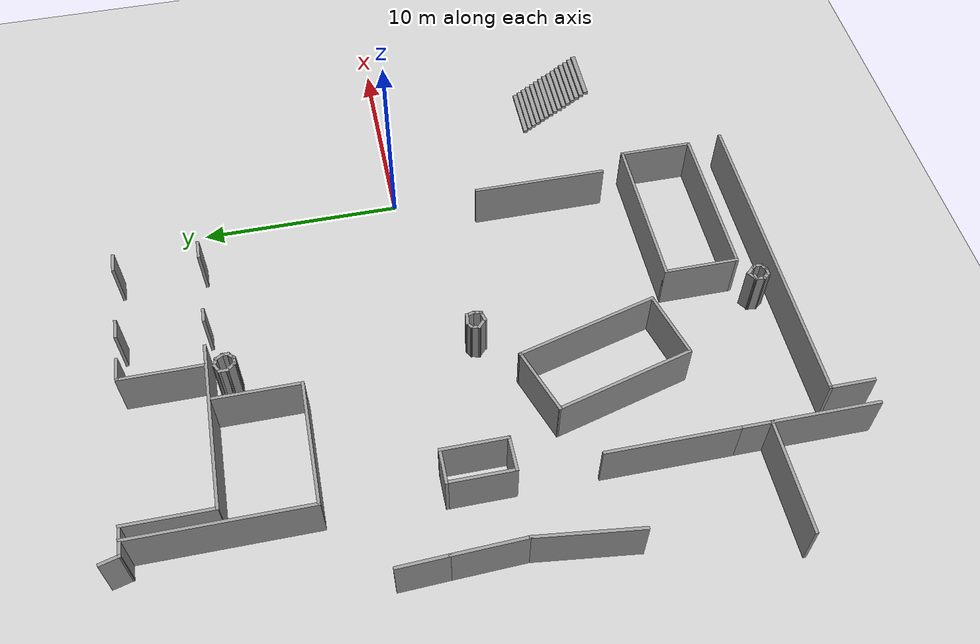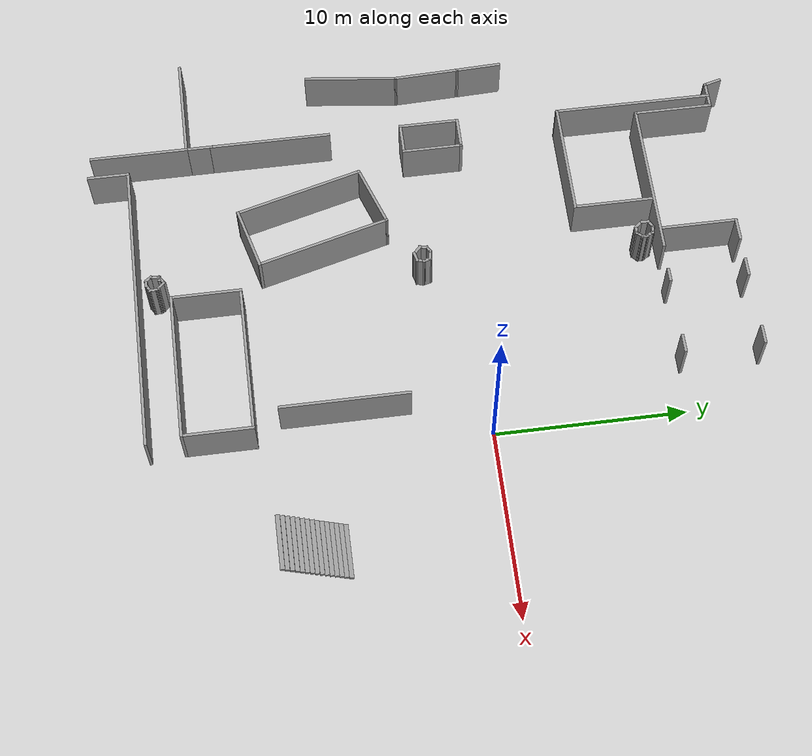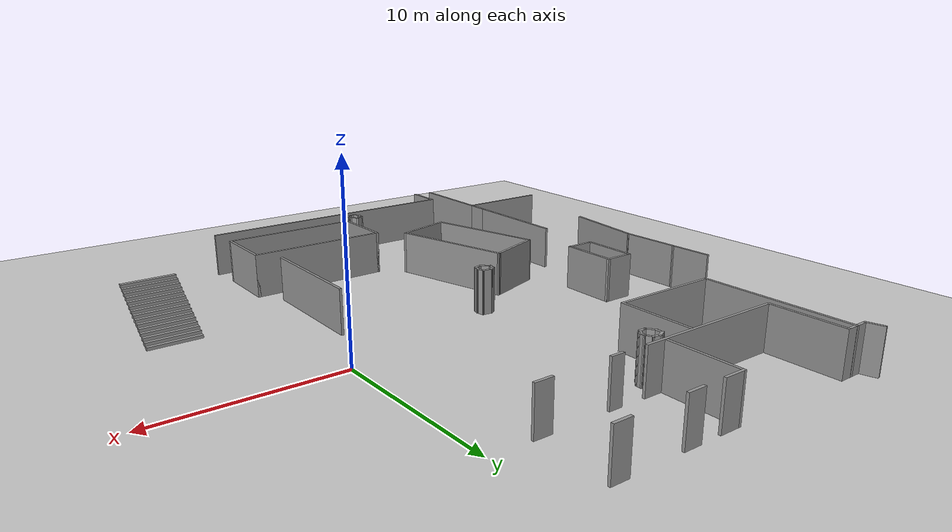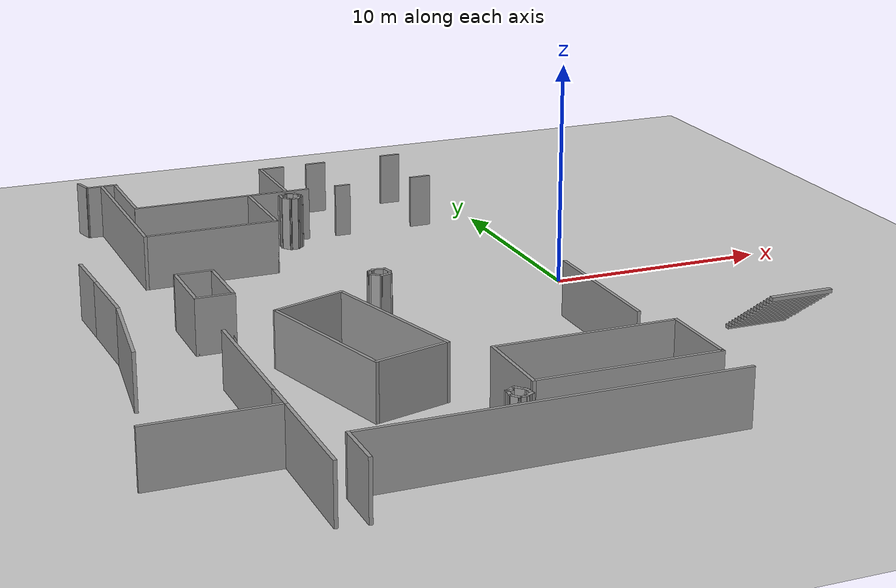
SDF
<sdf version="1.6">
 <world name="default">
  <model name="ground_plane">
   <static>1</static>
   <link name="link">
    <collision name="collision">
     <geometry><plane><normal>0 0 1</normal><size>100 100</size></plane></geometry>
     <surface>
      <contact><collide_bitmask>65535</collide_bitmask></contact>
      <friction><ode><mu>100</mu><mu2>50</mu2></ode></friction>
     </surface>
    </collision>
    <visual name="visual">
     <cast_shadows>0</cast_shadows>
     <geometry><plane><normal>0 0 1</normal><size>100 100</size></plane></geometry>
     <material>
      <script><uri>file://media/materials/scripts/gazebo.material</uri><name>Gazebo/Grey</name></script>
     </material>
    </visual>
   </link>
  </model>
  <model name="L8_1st">
   <pose>-0.728485 -0.360932 0 0 -0 0</pose>
   <link name="Stairs_0">
    <visual name="Stairs_0_Visual_0">
     <pose>6.15456 -7.6847 0.083333 0 -0 0</pose>
     <geometry><box><size>2.83541 0.233333 0.166667</size></box></geometry>
     <material>
      <script><uri>file://media/materials/scripts/gazebo.material</uri><name>Gazebo/Grey</name></script>
      <ambient>1 1 1 1</ambient>
     </material>
     <meta><layer>0</layer></meta>
    </visual>
    <collision name="Stairs_0_Collision_0">
     <geometry><box><size>2.83541 0.233333 0.166667</size></box></geometry>
     <pose>6.15456 -7.6847 0.083333 0 -0 0</pose>
    </collision>
    <visual name="Stairs_0_Visual_1">
     <pose>6.15456 -7.91804 0.25 0 -0 0</pose>
     <geometry><box><size>2.83541 0.233333 0.166667</size></box></geometry>
     <material>
      <script><uri>file://media/materials/scripts/gazebo.material</uri><name>Gazebo/Grey</name></script>
      <ambient>1 1 1 1</ambient>
     </material>
     <meta><layer>0</layer></meta>
    </visual>
    <collision name="Stairs_0_Collision_1">
     <geometry><box><size>2.83541 0.233333 0.166667</size></box></geometry>
     <pose>6.15456 -7.91804 0.25 0 -0 0</pose>
    </collision>
    <visual name="Stairs_0_Visual_2">
     <pose>6.15456 -8.15137 0.416667 0 -0 0</pose>
     <geometry><box><size>2.83541 0.233333 0.166667</size></box></geometry>
     <material>
      <script><uri>file://media/materials/scripts/gazebo.material</uri><name>Gazebo/Grey</name></script>
      <ambient>1 1 1 1</ambient>
     </material>
     <meta><layer>0</layer></meta>
    </visual>
    <collision name="Stairs_0_Collision_2">
     <geometry><box><size>2.83541 0.233333 0.166667</size></box></geometry>
     <pose>6.15456 -8.15137 0.416667 0 -0 0</pose>
    </collision>
    <visual name="Stairs_0_Visual_3">
     <pose>6.15456 -8.3847 0.583333 0 -0 0</pose>
     <geometry><box><size>2.83541 0.233333 0.166667</size></box></geometry>
     <material>
      <script><uri>file://media/materials/scripts/gazebo.material</uri><name>Gazebo/Grey</name></script>
      <ambient>1 1 1 1</ambient>
     </material>
     <meta><layer>0</layer></meta>
    </visual>
    <collision name="Stairs_0_Collision_3">
     <geometry><box><size>2.83541 0.233333 0.166667</size></box></geometry>
     <pose>6.15456 -8.3847 0.583333 0 -0 0</pose>
    </collision>
    <visual name="Stairs_0_Visual_4">
     <pose>6.15456 -8.61804 0.75 0 -0 0</pose>
     <geometry><box><size>2.83541 0.233333 0.166667</size></box></geometry>
     <material>
      <script><uri>file://media/materials/scripts/gazebo.material</uri><name>Gazebo/Grey</name></script>
      <ambient>1 1 1 1</ambient>
     </material>
     <meta><layer>0</layer></meta>
    </visual>
    <collision name="Stairs_0_Collision_4">
     <geometry><box><size>2.83541 0.233333 0.166667</size></box></geometry>
     <pose>6.15456 -8.61804 0.75 0 -0 0</pose>
    </collision>
    <visual name="Stairs_0_Visual_5">
     <pose>6.15456 -8.85137 0.916667 0 -0 0</pose>
     <geometry><box><size>2.83541 0.233333 0.166667</size></box></geometry>
     <material>
      <script><uri>file://media/materials/scripts/gazebo.material</uri><name>Gazebo/Grey</name></script>
      <ambient>1 1 1 1</ambient>
     </material>
     <meta><layer>0</layer></meta>
    </visual>
    <collision name="Stairs_0_Collision_5">
     <geometry><box><size>2.83541 0.233333 0.166667</size></box></geometry>
     <pose>6.15456 -8.85137 0.916667 0 -0 0</pose>
    </collision>
    <visual name="Stairs_0_Visual_6">
     <pose>6.15456 -9.0847 1.08333 0 -0 0</pose>
     <geometry><box><size>2.83541 0.233333 0.166667</size></box></geometry>
     <material>
      <script><uri>file://media/materials/scripts/gazebo.material</uri><name>Gazebo/Grey</name></script>
      <ambient>1 1 1 1</ambient>
     </material>
     <meta><layer>0</layer></meta>
    </visual>
    <collision name="Stairs_0_Collision_6">
     <geometry><box><size>2.83541 0.233333 0.166667</size></box></geometry>
     <pose>6.15456 -9.0847 1.08333 0 -0 0</pose>
    </collision>
    <visual name="Stairs_0_Visual_7">
     <pose>6.15456 -9.31804 1.25 0 -0 0</pose>
     <geometry><box><size>2.83541 0.233333 0.166667</size></box></geometry>
     <material>
      <script><uri>file://media/materials/scripts/gazebo.material</uri><name>Gazebo/Grey</name></script>
      <ambient>1 1 1 1</ambient>
     </material>
     <meta><layer>0</layer></meta>
    </visual>
    <collision name="Stairs_0_Collision_7">
     <geometry><box><size>2.83541 0.233333 0.166667</size></box></geometry>
     <pose>6.15456 -9.31804 1.25 0 -0 0</pose>
    </collision>
    <visual name="Stairs_0_Visual_8">
     <pose>6.15456 -9.55137 1.41667 0 -0 0</pose>
     <geometry><box><size>2.83541 0.233333 0.166667</size></box></geometry>
     <material>
      <script><uri>file://media/materials/scripts/gazebo.material</uri><name>Gazebo/Grey</name></script>
      <ambient>1 1 1 1</ambient>
     </material>
     <meta><layer>0</layer></meta>
    </visual>
    <collision name="Stairs_0_Collision_8">
     <geometry><box><size>2.83541 0.233333 0.166667</size></box></geometry>
     <pose>6.15456 -9.55137 1.41667 0 -0 0</pose>
    </collision>
    <visual name="Stairs_0_Visual_9">
     <pose>6.15456 -9.7847 1.58333 0 -0 0</pose>
     <geometry><box><size>2.83541 0.233333 0.166667</size></box></geometry>
     <material>
      <script><uri>file://media/materials/scripts/gazebo.material</uri><name>Gazebo/Grey</name></script>
      <ambient>1 1 1 1</ambient>
     </material>
     <meta><layer>0</layer></meta>
    </visual>
    <collision name="Stairs_0_Collision_9">
     <geometry><box><size>2.83541 0.233333 0.166667</size></box></geometry>
     <pose>6.15456 -9.7847 1.58333 0 -0 0</pose>
    </collision>
    <visual name="Stairs_0_Visual_10">
     <pose>6.15456 -10.018 1.75 0 -0 0</pose>
     <geometry><box><size>2.83541 0.233333 0.166667</size></box></geometry>
     <material>
      <script><uri>file://media/materials/scripts/gazebo.material</uri><name>Gazebo/Grey</name></script>
      <ambient>1 1 1 1</ambient>
     </material>
     <meta><layer>0</layer></meta>
    </visual>
    <collision name="Stairs_0_Collision_10">
     <geometry><box><size>2.83541 0.233333 0.166667</size></box></geometry>
     <pose>6.15456 -10.018 1.75 0 -0 0</pose>
    </collision>
    <visual name="Stairs_0_Visual_11">
     <pose>6.15456 -10.2514 1.91667 0 -0 0</pose>
     <geometry><box><size>2.83541 0.233333 0.166667</size></box></geometry>
     <material>
      <script><uri>file://media/materials/scripts/gazebo.material</uri><name>Gazebo/Grey</name></script>
      <ambient>1 1 1 1</ambient>
     </material>
     <meta><layer>0</layer></meta>
    </visual>
    <collision name="Stairs_0_Collision_11">
     <geometry><box><size>2.83541 0.233333 0.166667</size></box></geometry>
     <pose>6.15456 -10.2514 1.91667 0 -0 0</pose>
    </collision>
    <visual name="Stairs_0_Visual_12">
     <pose>6.15456 -10.4847 2.08333 0 -0 0</pose>
     <geometry><box><size>2.83541 0.233333 0.166667</size></box></geometry>
     <material>
      <script><uri>file://media/materials/scripts/gazebo.material</uri><name>Gazebo/Grey</name></script>
      <ambient>1 1 1 1</ambient>
     </material>
     <meta><layer>0</layer></meta>
    </visual>
    <collision name="Stairs_0_Collision_12">
     <geometry><box><size>2.83541 0.233333 0.166667</size></box></geometry>
     <pose>6.15456 -10.4847 2.08333 0 -0 0</pose>
    </collision>
    <visual name="Stairs_0_Visual_13">
     <pose>6.15456 -10.718 2.25 0 -0 0</pose>
     <geometry><box><size>2.83541 0.233333 0.166667</size></box></geometry>
     <material>
      <script><uri>file://media/materials/scripts/gazebo.material</uri><name>Gazebo/Grey</name></script>
      <ambient>1 1 1 1</ambient>
     </material>
     <meta><layer>0</layer></meta>
    </visual>
    <collision name="Stairs_0_Collision_13">
     <geometry><box><size>2.83541 0.233333 0.166667</size></box></geometry>
     <pose>6.15456 -10.718 2.25 0 -0 0</pose>
    </collision>
    <visual name="Stairs_0_Visual_14">
     <pose>6.15456 -10.9514 2.41667 0 -0 0</pose>
     <geometry><box><size>2.83541 0.233333 0.166667</size></box></geometry>
     <material>
      <script><uri>file://media/materials/scripts/gazebo.material</uri><name>Gazebo/Grey</name></script>
      <ambient>1 1 1 1</ambient>
     </material>
     <meta><layer>0</layer></meta>
    </visual>
    <collision name="Stairs_0_Collision_14">
     <geometry><box><size>2.83541 0.233333 0.166667</size></box></geometry>
     <pose>6.15456 -10.9514 2.41667 0 -0 0</pose>
    </collision>
   </link>
   <link name="Wall_1">
    <collision name="Wall_1_Collision">
     <geometry><box><size>1 0.15 2.5</size></box></geometry>
     <pose>0 0 1.25 0 -0 0</pose>
    </collision>
    <visual name="Wall_1_Visual">
     <pose>0 0 1.25 0 -0 0</pose>
     <geometry><box><size>1 0.15 2.5</size></box></geometry>
     <material>
      <script><uri>file://media/materials/scripts/gazebo.material</uri><name>Gazebo/Grey</name></script>
      <ambient>1 1 1 1</ambient>
     </material>
     <meta><layer>0</layer></meta>
    </visual>
    <pose>-17.5999 15.0329 0 0 -0 -1.309</pose>
   </link>
   <link name="Wall_10">
    <collision name="Wall_10_Collision">
     <geometry><box><size>1.25 0.15 2.5</size></box></geometry>
     <pose>0 0 1.25 0 -0 0</pose>
    </collision>
    <visual name="Wall_10_Visual">
     <pose>0 0 1.25 0 -0 0</pose>
     <geometry><box><size>1.25 0.15 2.5</size></box></geometry>
     <material>
      <script><uri>file://media/materials/scripts/gazebo.material</uri><name>Gazebo/Grey</name></script>
      <ambient>1 1 1 1</ambient>
     </material>
     <meta><layer>0</layer></meta>
    </visual>
    <pose>-8.28087 14.5624 0 0 -0 0</pose>
   </link>
   <link name="Wall_108">
    <collision name="Wall_108_Collision">
     <geometry><box><size>2.47667 0.15 2.5</size></box></geometry>
     <pose>0 0 1.25 0 -0 0</pose>
    </collision>
    <visual name="Wall_108_Visual">
     <pose>0 0 1.25 0 -0 0</pose>
     <geometry><box><size>2.47667 0.15 2.5</size></box></geometry>
     <material>
      <script><uri>file://media/materials/scripts/gazebo.material</uri><name>Gazebo/Grey</name></script>
      <ambient>1 1 1 1</ambient>
     </material>
     <meta><layer>0</layer></meta>
    </visual>
    <pose>-20.215 2.4122 0 0 -0 1.61025</pose>
   </link>
   <link name="Wall_110">
    <collision name="Wall_110_Collision">
     <geometry><box><size>3.57829 0.15 2.5</size></box></geometry>
     <pose>0 0 1.25 0 -0 0</pose>
    </collision>
    <visual name="Wall_110_Visual">
     <pose>0 0 1.25 0 -0 0</pose>
     <geometry><box><size>3.57829 0.15 2.5</size></box></geometry>
     <material>
      <script><uri>file://media/materials/scripts/gazebo.material</uri><name>Gazebo/Grey</name></script>
      <ambient>1 1 1 1</ambient>
     </material>
     <meta><layer>0</layer></meta>
    </visual>
    <pose>-20.1079 -0.46328 0 0 -0 1.6065</pose>
   </link>
   <link name="Wall_112">
    <collision name="Wall_112_Collision">
     <geometry><box><size>5.07883 0.15 2.5</size></box></geometry>
     <pose>0 0 1.25 0 -0 0</pose>
    </collision>
    <visual name="Wall_112_Visual">
     <pose>0 0 1.25 0 -0 0</pose>
     <geometry><box><size>5.07883 0.15 2.5</size></box></geometry>
     <material>
      <script><uri>file://media/materials/scripts/gazebo.material</uri><name>Gazebo/Grey</name></script>
      <ambient>1 1 1 1</ambient>
     </material>
     <meta><layer>0</layer></meta>
    </visual>
    <pose>-20.3373 -4.62355 0 0 -0 1.4526</pose>
   </link>
   <link name="Wall_15">
    <collision name="Wall_15_Collision">
     <geometry><box><size>0.75 0.15 2.5</size></box></geometry>
     <pose>0 0 1.25 0 -0 0</pose>
    </collision>
    <visual name="Wall_15_Visual">
     <pose>0 0 1.25 0 -0 0</pose>
     <geometry><box><size>0.75 0.15 2.5</size></box></geometry>
     <material>
      <script><uri>file://media/materials/scripts/gazebo.material</uri><name>Gazebo/Grey</name></script>
      <ambient>1 1 1 1</ambient>
     </material>
     <meta><layer>0</layer></meta>
    </visual>
    <pose>-6.01231 10.4676 0 0 -0 0</pose>
   </link>
   <link name="Wall_165">
    <collision name="Wall_165_Collision">
     <geometry><box><size>1.5 0.15 2.5</size></box></geometry>
     <pose>0 0 1.25 0 -0 0</pose>
    </collision>
    <visual name="Wall_165_Visual">
     <pose>0 0 1.25 0 -0 0</pose>
     <geometry><box><size>1.5 0.15 2.5</size></box></geometry>
     <material>
      <script><uri>file://media/materials/scripts/gazebo.material</uri><name>Gazebo/Grey</name></script>
      <ambient>1 1 1 1</ambient>
     </material>
     <meta><layer>0</layer></meta>
    </visual>
    <pose>-16.8493 -13.2356 0 0 -0 -1.5708</pose>
   </link>
   <link name="Wall_166">
    <collision name="Wall_166_Collision">
     <geometry><box><size>5.5 0.15 2.5</size></box></geometry>
     <pose>0 0 1.25 0 -0 0</pose>
    </collision>
    <visual name="Wall_166_Visual">
     <pose>0 0 1.25 0 -0 0</pose>
     <geometry><box><size>5.5 0.15 2.5</size></box></geometry>
     <material>
      <script><uri>file://media/materials/scripts/gazebo.material</uri><name>Gazebo/Grey</name></script>
      <ambient>1 1 1 1</ambient>
     </material>
     <meta><layer>0</layer></meta>
    </visual>
    <pose>-19.5243 -13.9106 0 0 -0 3.14159</pose>
   </link>
   <link name="Wall_17">
    <collision name="Wall_17_Collision">
     <geometry><box><size>1 0.15 2.5</size></box></geometry>
     <pose>0 0 1.25 0 -0 0</pose>
    </collision>
    <visual name="Wall_17_Visual">
     <pose>0 0 1.25 0 -0 0</pose>
     <geometry><box><size>1 0.15 2.5</size></box></geometry>
     <material>
      <script><uri>file://media/materials/scripts/gazebo.material</uri><name>Gazebo/Grey</name></script>
      <ambient>1 1 1 1</ambient>
     </material>
     <meta><layer>0</layer></meta>
    </visual>
    <pose>-2.00451 10.4676 0 0 -0 0</pose>
   </link>
   <link name="Wall_170">
    <collision name="Wall_170_Collision">
     <geometry><box><size>5.25 0.15 2.5</size></box></geometry>
     <pose>0 0 1.25 0 -0 0</pose>
    </collision>
    <visual name="Wall_170_Visual">
     <pose>0 0 1.25 0 -0 0</pose>
     <geometry><box><size>5.25 0.15 2.5</size></box></geometry>
     <material>
      <script><uri>file://media/materials/scripts/gazebo.material</uri><name>Gazebo/Grey</name></script>
      <ambient>1 1 1 1</ambient>
     </material>
     <meta><layer>0</layer></meta>
    </visual>
    <pose>-16.8493 -16.4606 0 0 -0 -1.5708</pose>
   </link>
   <link name="Wall_178">
    <collision name="Wall_178_Collision">
     <geometry><box><size>3.25 0.15 2.5</size></box></geometry>
     <pose>0 0 1.25 0 -0 0</pose>
    </collision>
    <visual name="Wall_178_Visual">
     <pose>0 0 1.25 0 -0 0</pose>
     <geometry><box><size>3.25 0.15 2.5</size></box></geometry>
     <material>
      <script><uri>file://media/materials/scripts/gazebo.material</uri><name>Gazebo/Grey</name></script>
      <ambient>1 1 1 1</ambient>
     </material>
     <meta><layer>0</layer></meta>
    </visual>
    <pose>-16.8799 -0.742669 0 0 -0 -1.5708</pose>
   </link>
   <link name="Wall_179">
    <collision name="Wall_179_Collision">
     <geometry><box><size>1.75 0.15 2.5</size></box></geometry>
     <pose>0 0 1.25 0 -0 0</pose>
    </collision>
    <visual name="Wall_179_Visual">
     <pose>0 0 1.25 0 -0 0</pose>
     <geometry><box><size>1.75 0.15 2.5</size></box></geometry>
     <material>
      <script><uri>file://media/materials/scripts/gazebo.material</uri><name>Gazebo/Grey</name></script>
      <ambient>1 1 1 1</ambient>
     </material>
     <meta><layer>0</layer></meta>
    </visual>
    <pose>-16.0799 -2.29267 0 0 -0 0</pose>
   </link>
   <link name="Wall_180">
    <collision name="Wall_180_Collision">
     <geometry><box><size>3.25 0.15 2.5</size></box></geometry>
     <pose>0 0 1.25 0 -0 0</pose>
    </collision>
    <visual name="Wall_180_Visual">
     <pose>0 0 1.25 0 -0 0</pose>
     <geometry><box><size>3.25 0.15 2.5</size></box></geometry>
     <material>
      <script><uri>file://media/materials/scripts/gazebo.material</uri><name>Gazebo/Grey</name></script>
      <ambient>1 1 1 1</ambient>
     </material>
     <meta><layer>0</layer></meta>
    </visual>
    <pose>-15.2799 -0.742669 0 0 -0 1.5708</pose>
   </link>
   <link name="Wall_181">
    <collision name="Wall_181_Collision">
     <geometry><box><size>1.75 0.15 2.5</size></box></geometry>
     <pose>0 0 1.25 0 -0 0</pose>
    </collision>
    <visual name="Wall_181_Visual">
     <pose>0 0 1.25 0 -0 0</pose>
     <geometry><box><size>1.75 0.15 2.5</size></box></geometry>
     <material>
      <script><uri>file://media/materials/scripts/gazebo.material</uri><name>Gazebo/Grey</name></script>
      <ambient>1 1 1 1</ambient>
     </material>
     <meta><layer>0</layer></meta>
    </visual>
    <pose>-16.0799 0.807331 0 0 -0 3.14159</pose>
   </link>
   <link name="Wall_183">
    <collision name="Wall_183_Collision">
     <geometry><box><size>8.5 0.15 2.5</size></box></geometry>
     <pose>0 0 1.25 0 -0 0</pose>
    </collision>
    <visual name="Wall_183_Visual">
     <pose>0 0 1.25 0 -0 0</pose>
     <geometry><box><size>8.5 0.15 2.5</size></box></geometry>
     <material>
      <script><uri>file://media/materials/scripts/gazebo.material</uri><name>Gazebo/Grey</name></script>
      <ambient>1 1 1 1</ambient>
     </material>
     <meta><layer>0</layer></meta>
    </visual>
    <pose>-16.7881 10.4591 0 0 -0 -1.5708</pose>
   </link>
   <link name="Wall_184">
    <collision name="Wall_184_Collision">
     <geometry><box><size>6.25 0.15 2.5</size></box></geometry>
     <pose>0 0 1.25 0 -0 0</pose>
    </collision>
    <visual name="Wall_184_Visual">
     <pose>0 0 1.25 0 -0 0</pose>
     <geometry><box><size>6.25 0.15 2.5</size></box></geometry>
     <material>
      <script><uri>file://media/materials/scripts/gazebo.material</uri><name>Gazebo/Grey</name></script>
      <ambient>1 1 1 1</ambient>
     </material>
     <meta><layer>0</layer></meta>
    </visual>
    <pose>-13.7381 6.28411 0 0 -0 0</pose>
   </link>
   <link name="Wall_185">
    <collision name="Wall_185_Collision">
     <geometry><box><size>4.25 0.15 2.5</size></box></geometry>
     <pose>0 0 1.25 0 -0 0</pose>
    </collision>
    <visual name="Wall_185_Visual">
     <pose>0 0 1.25 0 -0 0</pose>
     <geometry><box><size>4.25 0.15 2.5</size></box></geometry>
     <material>
      <script><uri>file://media/materials/scripts/gazebo.material</uri><name>Gazebo/Grey</name></script>
      <ambient>1 1 1 1</ambient>
     </material>
     <meta><layer>0</layer></meta>
    </visual>
    <pose>-10.6881 8.33411 0 0 -0 1.5708</pose>
   </link>
   <link name="Wall_187">
    <collision name="Wall_187_Collision">
     <geometry><box><size>6.5 0.15 2.5</size></box></geometry>
     <pose>0 0 1.25 0 -0 0</pose>
    </collision>
    <visual name="Wall_187_Visual">
     <pose>0 0 1.25 0 -0 0</pose>
     <geometry><box><size>6.5 0.15 2.5</size></box></geometry>
     <material>
      <script><uri>file://media/materials/scripts/gazebo.material</uri><name>Gazebo/Grey</name></script>
      <ambient>1 1 1 1</ambient>
     </material>
     <meta><layer>0</layer></meta>
    </visual>
    <pose>-16.8493 -9.3856 0 0 -0 1.5708</pose>
   </link>
   <link name="Wall_19">
    <collision name="Wall_19_Collision">
     <geometry><box><size>1 0.15 2.5</size></box></geometry>
     <pose>0 0 1.25 0 -0 0</pose>
    </collision>
    <visual name="Wall_19_Visual">
     <pose>0 0 1.25 0 -0 0</pose>
     <geometry><box><size>1 0.15 2.5</size></box></geometry>
     <material>
      <script><uri>file://media/materials/scripts/gazebo.material</uri><name>Gazebo/Grey</name></script>
      <ambient>1 1 1 1</ambient>
     </material>
     <meta><layer>0</layer></meta>
    </visual>
    <pose>-5.99225 14.5603 0 0 -0 0</pose>
   </link>
   <link name="Wall_2">
    <collision name="Wall_2_Collision">
     <geometry><box><size>1.5 0.15 2.5</size></box></geometry>
     <pose>0 0 1.25 0 -0 0</pose>
    </collision>
    <visual name="Wall_2_Visual">
     <pose>0 0 1.25 0 -0 0</pose>
     <geometry><box><size>1.5 0.15 2.5</size></box></geometry>
     <material>
      <script><uri>file://media/materials/scripts/gazebo.material</uri><name>Gazebo/Grey</name></script>
      <ambient>1 1 1 1</ambient>
     </material>
     <meta><layer>0</layer></meta>
    </visual>
    <pose>-16.8149 14.6224 0 0 -0 0</pose>
   </link>
   <link name="Wall_205">
    <collision name="Wall_205_Collision">
     <geometry><box><size>0.424966 0.15 2.5</size></box></geometry>
     <pose>0 0 1.25 0 -0 0</pose>
    </collision>
    <visual name="Wall_205_Visual">
     <pose>0 0 1.25 0 -0 0</pose>
     <geometry><box><size>0.424966 0.15 2.5</size></box></geometry>
     <material>
      <script><uri>file://media/materials/scripts/gazebo.material</uri><name>Gazebo/Grey</name></script>
      <ambient>1 1 1 1</ambient>
     </material>
     <meta><layer>0</layer></meta>
    </visual>
    <pose>-9.09049 -1.75113 0 0 -0 -2.59807</pose>
   </link>
   <link name="Wall_206">
    <collision name="Wall_206_Collision">
     <geometry><box><size>0.509128 0.15 2.5</size></box></geometry>
     <pose>0 0 1.25 0 -0 0</pose>
    </collision>
    <visual name="Wall_206_Visual">
     <pose>0 0 1.25 0 -0 0</pose>
     <geometry><box><size>0.509128 0.15 2.5</size></box></geometry>
     <material>
      <script><uri>file://media/materials/scripts/gazebo.material</uri><name>Gazebo/Grey</name></script>
      <ambient>1 1 1 1</ambient>
     </material>
     <meta><layer>0</layer></meta>
    </visual>
    <pose>-9.24839 -2.01734 0 0 -0 -1.79674</pose>
   </link>
   <link name="Wall_207">
    <collision name="Wall_207_Collision">
     <geometry><box><size>0.644904 0.15 2.5</size></box></geometry>
     <pose>0 0 1.25 0 -0 0</pose>
    </collision>
    <visual name="Wall_207_Visual">
     <pose>0 0 1.25 0 -0 0</pose>
     <geometry><box><size>0.644904 0.15 2.5</size></box></geometry>
     <material>
      <script><uri>file://media/materials/scripts/gazebo.material</uri><name>Gazebo/Grey</name></script>
      <ambient>1 1 1 1</ambient>
     </material>
     <meta><layer>0</layer></meta>
    </visual>
    <pose>-9.10689 -2.34018 0 0 -0 -0.746038</pose>
   </link>
   <link name="Wall_208">
    <collision name="Wall_208_Collision">
     <geometry><box><size>0.582921 0.15 2.5</size></box></geometry>
     <pose>0 0 1.25 0 -0 0</pose>
    </collision>
    <visual name="Wall_208_Visual">
     <pose>0 0 1.25 0 -0 0</pose>
     <geometry><box><size>0.582921 0.15 2.5</size></box></geometry>
     <material>
      <script><uri>file://media/materials/scripts/gazebo.material</uri><name>Gazebo/Grey</name></script>
      <ambient>1 1 1 1</ambient>
     </material>
     <meta><layer>0</layer></meta>
    </visual>
    <pose>-8.7159 -2.4729 0 0 -0 0.258577</pose>
   </link>
   <link name="Wall_209">
    <collision name="Wall_209_Collision">
     <geometry><box><size>0.5 0.15 2.5</size></box></geometry>
     <pose>0 0 1.25 0 -0 0</pose>
    </collision>
    <visual name="Wall_209_Visual">
     <pose>0 0 1.25 0 -0 0</pose>
     <geometry><box><size>0.5 0.15 2.5</size></box></geometry>
     <material>
      <script><uri>file://media/materials/scripts/gazebo.material</uri><name>Gazebo/Grey</name></script>
      <ambient>1 1 1 1</ambient>
     </material>
     <meta><layer>0</layer></meta>
    </visual>
    <pose>-8.46134 -2.24851 0 0 -0 1.309</pose>
   </link>
   <link name="Wall_21">
    <collision name="Wall_21_Collision">
     <geometry><box><size>1 0.15 2.5</size></box></geometry>
     <pose>0 0 1.25 0 -0 0</pose>
    </collision>
    <visual name="Wall_21_Visual">
     <pose>0 0 1.25 0 -0 0</pose>
     <geometry><box><size>1 0.15 2.5</size></box></geometry>
     <material>
      <script><uri>file://media/materials/scripts/gazebo.material</uri><name>Gazebo/Grey</name></script>
      <ambient>1 1 1 1</ambient>
     </material>
     <meta><layer>0</layer></meta>
    </visual>
    <pose>-2.00451 14.5952 0 0 -0 0</pose>
   </link>
   <link name="Wall_210">
    <collision name="Wall_210_Collision">
     <geometry><box><size>0.5 0.15 2.5</size></box></geometry>
     <pose>0 0 1.25 0 -0 0</pose>
    </collision>
    <visual name="Wall_210_Visual">
     <pose>0 0 1.25 0 -0 0</pose>
     <geometry><box><size>0.5 0.15 2.5</size></box></geometry>
     <material>
      <script><uri>file://media/materials/scripts/gazebo.material</uri><name>Gazebo/Grey</name></script>
      <ambient>1 1 1 1</ambient>
     </material>
     <meta><layer>0</layer></meta>
    </visual>
    <pose>-8.46134 -1.91044 0 0 -0 1.8326</pose>
   </link>
   <link name="Wall_211">
    <collision name="Wall_211_Collision">
     <geometry><box><size>0.620206 0.15 2.5</size></box></geometry>
     <pose>0 0 1.25 0 -0 0</pose>
    </collision>
    <visual name="Wall_211_Visual">
     <pose>0 0 1.25 0 -0 0</pose>
     <geometry><box><size>0.620206 0.15 2.5</size></box></geometry>
     <material>
      <script><uri>file://media/materials/scripts/gazebo.material</uri><name>Gazebo/Grey</name></script>
      <ambient>1 1 1 1</ambient>
     </material>
     <meta><layer>0</layer></meta>
    </visual>
    <pose>-8.73973 -1.71071 0 0 -0 3.01069</pose>
   </link>
   <link name="Wall_213">
    <collision name="Wall_213_Collision">
     <geometry><box><size>0.3247 0.15 2.5</size></box></geometry>
     <pose>0 0 1.25 0 -0 0</pose>
    </collision>
    <visual name="Wall_213_Visual">
     <pose>0 0 1.25 0 -0 0</pose>
     <geometry><box><size>0.3247 0.15 2.5</size></box></geometry>
     <material>
      <script><uri>file://media/materials/scripts/gazebo.material</uri><name>Gazebo/Grey</name></script>
      <ambient>1 1 1 1</ambient>
     </material>
     <meta><layer>0</layer></meta>
    </visual>
    <pose>-9.10346 -15.8457 0 0 -0 -3.05551</pose>
   </link>
   <link name="Wall_214">
    <collision name="Wall_214_Collision">
     <geometry><box><size>0.559811 0.15 2.5</size></box></geometry>
     <pose>0 0 1.25 0 -0 0</pose>
    </collision>
    <visual name="Wall_214_Visual">
     <pose>0 0 1.25 0 -0 0</pose>
     <geometry><box><size>0.559811 0.15 2.5</size></box></geometry>
     <material>
      <script><uri>file://media/materials/scripts/gazebo.material</uri><name>Gazebo/Grey</name></script>
      <ambient>1 1 1 1</ambient>
     </material>
     <meta><layer>0</layer></meta>
    </visual>
    <pose>-9.20954 -16.0397 0 0 -0 -1.66394</pose>
   </link>
   <link name="Wall_215">
    <collision name="Wall_215_Collision">
     <geometry><box><size>0.490565 0.15 2.5</size></box></geometry>
     <pose>0 0 1.25 0 -0 0</pose>
    </collision>
    <visual name="Wall_215_Visual">
     <pose>0 0 1.25 0 -0 0</pose>
     <geometry><box><size>0.490565 0.15 2.5</size></box></geometry>
     <material>
      <script><uri>file://media/materials/scripts/gazebo.material</uri><name>Gazebo/Grey</name></script>
      <ambient>1 1 1 1</ambient>
     </material>
     <meta><layer>0</layer></meta>
    </visual>
    <pose>-9.12361 -16.3953 0 0 -0 -0.906426</pose>
   </link>
   <link name="Wall_216">
    <collision name="Wall_216_Collision">
     <geometry><box><size>0.43004 0.15 2.5</size></box></geometry>
     <pose>0 0 1.25 0 -0 0</pose>
    </collision>
    <visual name="Wall_216_Visual">
     <pose>0 0 1.25 0 -0 0</pose>
     <geometry><box><size>0.43004 0.15 2.5</size></box></geometry>
     <material>
      <script><uri>file://media/materials/scripts/gazebo.material</uri><name>Gazebo/Grey</name></script>
      <ambient>1 1 1 1</ambient>
     </material>
     <meta><layer>0</layer></meta>
    </visual>
    <pose>-8.8786 -16.5294 0 0 -0 0</pose>
   </link>
   <link name="Wall_217">
    <collision name="Wall_217_Collision">
     <geometry><box><size>0.5 0.15 2.5</size></box></geometry>
     <pose>0 0 1.25 0 -0 0</pose>
    </collision>
    <visual name="Wall_217_Visual">
     <pose>0 0 1.25 0 -0 0</pose>
     <geometry><box><size>0.5 0.15 2.5</size></box></geometry>
     <material>
      <script><uri>file://media/materials/scripts/gazebo.material</uri><name>Gazebo/Grey</name></script>
      <ambient>1 1 1 1</ambient>
     </material>
     <meta><layer>0</layer></meta>
    </visual>
    <pose>-8.58703 -16.4244 0 0 -0 0.523599</pose>
   </link>
   <link name="Wall_218">
    <collision name="Wall_218_Collision">
     <geometry><box><size>0.488703 0.15 2.5</size></box></geometry>
     <pose>0 0 1.25 0 -0 0</pose>
    </collision>
    <visual name="Wall_218_Visual">
     <pose>0 0 1.25 0 -0 0</pose>
     <geometry><box><size>0.488703 0.15 2.5</size></box></geometry>
     <material>
      <script><uri>file://media/materials/scripts/gazebo.material</uri><name>Gazebo/Grey</name></script>
      <ambient>1 1 1 1</ambient>
     </material>
     <meta><layer>0</layer></meta>
    </visual>
    <pose>-8.44579 -16.1853 0 0 -0 1.63173</pose>
   </link>
   <link name="Wall_219">
    <collision name="Wall_219_Collision">
     <geometry><box><size>0.25 0.15 2.5</size></box></geometry>
     <pose>0 0 1.25 0 -0 0</pose>
    </collision>
    <visual name="Wall_219_Visual">
     <pose>0 0 1.25 0 -0 0</pose>
     <geometry><box><size>0.25 0.15 2.5</size></box></geometry>
     <material>
      <script><uri>file://media/materials/scripts/gazebo.material</uri><name>Gazebo/Grey</name></script>
      <ambient>1 1 1 1</ambient>
     </material>
     <meta><layer>0</layer></meta>
    </visual>
    <pose>-8.4811 -15.973 0 0 -0 2.0944</pose>
   </link>
   <link name="Wall_220">
    <collision name="Wall_220_Collision">
     <geometry><box><size>0.586747 0.15 2.5</size></box></geometry>
     <pose>0 0 1.25 0 -0 0</pose>
    </collision>
    <visual name="Wall_220_Visual">
     <pose>0 0 1.25 0 -0 0</pose>
     <geometry><box><size>0.586747 0.15 2.5</size></box></geometry>
     <material>
      <script><uri>file://media/materials/scripts/gazebo.material</uri><name>Gazebo/Grey</name></script>
      <ambient>1 1 1 1</ambient>
     </material>
     <meta><layer>0</layer></meta>
    </visual>
    <pose>-8.65608 -15.771 0 0 -0 2.32787</pose>
   </link>
   <link name="Wall_221">
    <collision name="Wall_221_Collision">
     <geometry><box><size>0.61323 0.15 2.5</size></box></geometry>
     <pose>0 0 1.25 0 -0 0</pose>
    </collision>
    <visual name="Wall_221_Visual">
     <pose>0 0 1.25 0 -0 0</pose>
     <geometry><box><size>0.61323 0.15 2.5</size></box></geometry>
     <material>
      <script><uri>file://media/materials/scripts/gazebo.material</uri><name>Gazebo/Grey</name></script>
      <ambient>1 1 1 1</ambient>
     </material>
     <meta><layer>0</layer></meta>
    </visual>
    <pose>-8.99827 -15.724 0 0 -0 -2.5497</pose>
   </link>
   <link name="Wall_240">
    <collision name="Wall_240_Collision">
     <geometry><box><size>6.75 0.15 2.5</size></box></geometry>
     <pose>0 0 1.25 0 -0 0</pose>
    </collision>
    <visual name="Wall_240_Visual">
     <pose>0 0 1.25 0 -0 0</pose>
     <geometry><box><size>6.75 0.15 2.5</size></box></geometry>
     <material>
      <script><uri>file://media/materials/scripts/gazebo.material</uri><name>Gazebo/Grey</name></script>
      <ambient>1 1 1 1</ambient>
     </material>
     <meta><layer>0</layer></meta>
    </visual>
    <pose>-0.994539 -7.03138 0 0 -0 -1.5708</pose>
   </link>
   <link name="Wall_243">
    <collision name="Wall_243_Collision">
     <geometry><box><size>3.75 0.15 2.5</size></box></geometry>
     <pose>0 0 1.25 0 -0 0</pose>
    </collision>
    <visual name="Wall_243_Visual">
     <pose>0 0 1.25 0 -0 0</pose>
     <geometry><box><size>3.75 0.15 2.5</size></box></geometry>
     <material>
      <script><uri>file://media/materials/scripts/gazebo.material</uri><name>Gazebo/Grey</name></script>
      <ambient>1 1 1 1</ambient>
     </material>
     <meta><layer>0</layer></meta>
    </visual>
    <pose>-0.050074 -13.5069 0 0 -0 -1.5708</pose>
   </link>
   <link name="Wall_244">
    <collision name="Wall_244_Collision">
     <geometry><box><size>8 0.15 2.5</size></box></geometry>
     <pose>0 0 1.25 0 -0 0</pose>
    </collision>
    <visual name="Wall_244_Visual">
     <pose>0 0 1.25 0 -0 0</pose>
     <geometry><box><size>8 0.15 2.5</size></box></geometry>
     <material>
      <script><uri>file://media/materials/scripts/gazebo.material</uri><name>Gazebo/Grey</name></script>
      <ambient>1 1 1 1</ambient>
     </material>
     <meta><layer>0</layer></meta>
    </visual>
    <pose>-3.97507 -15.3069 0 0 -0 3.14159</pose>
   </link>
   <link name="Wall_245">
    <collision name="Wall_245_Collision">
     <geometry><box><size>3.75 0.15 2.5</size></box></geometry>
     <pose>0 0 1.25 0 -0 0</pose>
    </collision>
    <visual name="Wall_245_Visual">
     <pose>0 0 1.25 0 -0 0</pose>
     <geometry><box><size>3.75 0.15 2.5</size></box></geometry>
     <material>
      <script><uri>file://media/materials/scripts/gazebo.material</uri><name>Gazebo/Grey</name></script>
      <ambient>1 1 1 1</ambient>
     </material>
     <meta><layer>0</layer></meta>
    </visual>
    <pose>-7.90007 -13.5069 0 0 -0 1.5708</pose>
   </link>
   <link name="Wall_246">
    <collision name="Wall_246_Collision">
     <geometry><box><size>8 0.15 2.5</size></box></geometry>
     <pose>0 0 1.25 0 -0 0</pose>
    </collision>
    <visual name="Wall_246_Visual">
     <pose>0 0 1.25 0 -0 0</pose>
     <geometry><box><size>8 0.15 2.5</size></box></geometry>
     <material>
      <script><uri>file://media/materials/scripts/gazebo.material</uri><name>Gazebo/Grey</name></script>
      <ambient>1 1 1 1</ambient>
     </material>
     <meta><layer>0</layer></meta>
    </visual>
    <pose>-3.97507 -11.7069 0 0 -0 0</pose>
   </link>
   <link name="Wall_248">
    <collision name="Wall_248_Collision">
     <geometry><box><size>7.25 0.15 2.5</size></box></geometry>
     <pose>0 0 1.25 0 -0 0</pose>
    </collision>
    <visual name="Wall_248_Visual">
     <pose>0 0 1.25 0 -0 0</pose>
     <geometry><box><size>7.25 0.15 2.5</size></box></geometry>
     <material>
      <script><uri>file://media/materials/scripts/gazebo.material</uri><name>Gazebo/Grey</name></script>
      <ambient>1 1 1 1</ambient>
     </material>
     <meta><layer>0</layer></meta>
    </visual>
    <pose>-10.2161 -7.16616 0 0 -0 -1.309</pose>
   </link>
   <link name="Wall_249">
    <collision name="Wall_249_Collision">
     <geometry><box><size>3.5 0.15 2.5</size></box></geometry>
     <pose>0 0 1.25 0 -0 0</pose>
    </collision>
    <visual name="Wall_249_Visual">
     <pose>0 0 1.25 0 -0 0</pose>
     <geometry><box><size>3.5 0.15 2.5</size></box></geometry>
     <material>
      <script><uri>file://media/materials/scripts/gazebo.material</uri><name>Gazebo/Grey</name></script>
      <ambient>1 1 1 1</ambient>
     </material>
     <meta><layer>0</layer></meta>
    </visual>
    <pose>-10.9152 -11.0287 0 0 -0 -2.87979</pose>
   </link>
   <link name="Wall_250">
    <collision name="Wall_250_Collision">
     <geometry><box><size>7 0.15 2.5</size></box></geometry>
     <pose>0 0 1.25 0 -0 0</pose>
    </collision>
    <visual name="Wall_250_Visual">
     <pose>0 0 1.25 0 -0 0</pose>
     <geometry><box><size>7 0.15 2.5</size></box></geometry>
     <material>
      <script><uri>file://media/materials/scripts/gazebo.material</uri><name>Gazebo/Grey</name></script>
      <ambient>1 1 1 1</ambient>
     </material>
     <meta><layer>0</layer></meta>
    </visual>
    <pose>-13.4196 -8.15394 0 0 -0 1.8326</pose>
   </link>
   <link name="Wall_251">
    <collision name="Wall_251_Collision">
     <geometry><box><size>3.50931 0.15 2.5</size></box></geometry>
     <pose>0 0 1.25 0 -0 0</pose>
    </collision>
    <visual name="Wall_251_Visual">
     <pose>0 0 1.25 0 -0 0</pose>
     <geometry><box><size>3.50931 0.15 2.5</size></box></geometry>
     <material>
      <script><uri>file://media/materials/scripts/gazebo.material</uri><name>Gazebo/Grey</name></script>
      <ambient>1 1 1 1</ambient>
     </material>
     <meta><layer>0</layer></meta>
    </visual>
    <pose>-12.7205 -4.29139 0 0 -0 0.336288</pose>
   </link>
   <link name="Wall_255">
    <collision name="Wall_255_Collision">
     <geometry><box><size>0.571226 0.15 2.5</size></box></geometry>
     <pose>0 0 1.25 0 -0 0</pose>
    </collision>
    <visual name="Wall_255_Visual">
     <pose>0 0 1.25 0 -0 0</pose>
     <geometry><box><size>0.571226 0.15 2.5</size></box></geometry>
     <material>
      <script><uri>file://media/materials/scripts/gazebo.material</uri><name>Gazebo/Grey</name></script>
      <ambient>1 1 1 1</ambient>
     </material>
     <meta><layer>0</layer></meta>
    </visual>
    <pose>-9.14197 10.043 0 0 -0 -2.64252</pose>
   </link>
   <link name="Wall_256">
    <collision name="Wall_256_Collision">
     <geometry><box><size>0.5 0.15 2.5</size></box></geometry>
     <pose>0 0 1.25 0 -0 0</pose>
    </collision>
    <visual name="Wall_256_Visual">
     <pose>0 0 1.25 0 -0 0</pose>
     <geometry><box><size>0.5 0.15 2.5</size></box></geometry>
     <material>
      <script><uri>file://media/materials/scripts/gazebo.material</uri><name>Gazebo/Grey</name></script>
      <ambient>1 1 1 1</ambient>
     </material>
     <meta><layer>0</layer></meta>
    </visual>
    <pose>-9.3116 9.76721 0 0 -0 -1.5708</pose>
   </link>
   <link name="Wall_257">
    <collision name="Wall_257_Collision">
     <geometry><box><size>0.608498 0.15 2.5</size></box></geometry>
     <pose>0 0 1.25 0 -0 0</pose>
    </collision>
    <visual name="Wall_257_Visual">
     <pose>0 0 1.25 0 -0 0</pose>
     <geometry><box><size>0.608498 0.15 2.5</size></box></geometry>
     <material>
      <script><uri>file://media/materials/scripts/gazebo.material</uri><name>Gazebo/Grey</name></script>
      <ambient>1 1 1 1</ambient>
     </material>
     <meta><layer>0</layer></meta>
    </visual>
    <pose>-9.17821 9.41771 0 0 -0 -0.865113</pose>
   </link>
   <link name="Wall_258">
    <collision name="Wall_258_Collision">
     <geometry><box><size>0.488076 0.15 2.5</size></box></geometry>
     <pose>0 0 1.25 0 -0 0</pose>
    </collision>
    <visual name="Wall_258_Visual">
     <pose>0 0 1.25 0 -0 0</pose>
     <geometry><box><size>0.488076 0.15 2.5</size></box></geometry>
     <material>
      <script><uri>file://media/materials/scripts/gazebo.material</uri><name>Gazebo/Grey</name></script>
      <ambient>1 1 1 1</ambient>
     </material>
     <meta><layer>0</layer></meta>
    </visual>
    <pose>-8.86049 9.23616 0 0 -0 -0.041715</pose>
   </link>
   <link name="Wall_259">
    <collision name="Wall_259_Collision">
     <geometry><box><size>0.5 0.15 2.5</size></box></geometry>
     <pose>0 0 1.25 0 -0 0</pose>
    </collision>
    <visual name="Wall_259_Visual">
     <pose>0 0 1.25 0 -0 0</pose>
     <geometry><box><size>0.5 0.15 2.5</size></box></geometry>
     <material>
      <script><uri>file://media/materials/scripts/gazebo.material</uri><name>Gazebo/Grey</name></script>
      <ambient>1 1 1 1</ambient>
     </material>
     <meta><layer>0</layer></meta>
    </visual>
    <pose>-8.56771 9.36814 0 0 -0 0.785398</pose>
   </link>
   <link name="Wall_260">
    <collision name="Wall_260_Collision">
     <geometry><box><size>0.423524 0.15 2.5</size></box></geometry>
     <pose>0 0 1.25 0 -0 0</pose>
    </collision>
    <visual name="Wall_260_Visual">
     <pose>0 0 1.25 0 -0 0</pose>
     <geometry><box><size>0.423524 0.15 2.5</size></box></geometry>
     <material>
      <script><uri>file://media/materials/scripts/gazebo.material</uri><name>Gazebo/Grey</name></script>
      <ambient>1 1 1 1</ambient>
     </material>
     <meta><layer>0</layer></meta>
    </visual>
    <pose>-8.44397 9.61335 0 0 -0 1.5708</pose>
   </link>
   <link name="Wall_261">
    <collision name="Wall_261_Collision">
     <geometry><box><size>0.5 0.15 2.5</size></box></geometry>
     <pose>0 0 1.25 0 -0 0</pose>
    </collision>
    <visual name="Wall_261_Visual">
     <pose>0 0 1.25 0 -0 0</pose>
     <geometry><box><size>0.5 0.15 2.5</size></box></geometry>
     <material>
      <script><uri>file://media/materials/scripts/gazebo.material</uri><name>Gazebo/Grey</name></script>
      <ambient>1 1 1 1</ambient>
     </material>
     <meta><layer>0</layer></meta>
    </visual>
    <pose>-8.53147 9.90167 0 0 -0 2.0944</pose>
   </link>
   <link name="Wall_262">
    <collision name="Wall_262_Collision">
     <geometry><box><size>0.5 0.15 2.5</size></box></geometry>
     <pose>0 0 1.25 0 -0 0</pose>
    </collision>
    <visual name="Wall_262_Visual">
     <pose>0 0 1.25 0 -0 0</pose>
     <geometry><box><size>0.5 0.15 2.5</size></box></geometry>
     <material>
      <script><uri>file://media/materials/scripts/gazebo.material</uri><name>Gazebo/Grey</name></script>
      <ambient>1 1 1 1</ambient>
     </material>
     <meta><layer>0</layer></meta>
    </visual>
    <pose>-8.78801 10.0985 0 0 -0 2.87979</pose>
   </link>
   <link name="Wall_3">
    <collision name="Wall_3_Collision">
     <geometry><box><size>4.22016 0.15 2.5</size></box></geometry>
     <pose>0 0 1.25 0 -0 0</pose>
    </collision>
    <visual name="Wall_3_Visual">
     <pose>0 0 1.25 0 -0 0</pose>
     <geometry><box><size>4.22016 0.15 2.5</size></box></geometry>
     <material>
      <script><uri>file://media/materials/scripts/gazebo.material</uri><name>Gazebo/Grey</name></script>
      <ambient>1 1 1 1</ambient>
     </material>
     <meta><layer>0</layer></meta>
    </visual>
    <pose>-16.1399 12.5873 0 0 -0 -1.5708</pose>
   </link>
   <link name="Wall_4">
    <collision name="Wall_4_Collision">
     <geometry><box><size>8.5 0.15 2.5</size></box></geometry>
     <pose>0 0 1.25 0 -0 0</pose>
    </collision>
    <visual name="Wall_4_Visual">
     <pose>0 0 1.25 0 -0 0</pose>
     <geometry><box><size>8.5 0.15 2.5</size></box></geometry>
     <material>
      <script><uri>file://media/materials/scripts/gazebo.material</uri><name>Gazebo/Grey</name></script>
      <ambient>1 1 1 1</ambient>
     </material>
     <meta><layer>0</layer></meta>
    </visual>
    <pose>-11.9649 10.5172 0 0 -0 0</pose>
   </link>
   <link name="Wall_40">
    <collision name="Wall_40_Collision">
     <geometry><box><size>16 0.15 2.5</size></box></geometry>
     <pose>0 0 1.25 0 -0 0</pose>
    </collision>
    <visual name="Wall_40_Visual">
     <pose>0 0 1.25 0 -0 0</pose>
     <geometry><box><size>16 0.15 2.5</size></box></geometry>
     <material>
      <script><uri>file://media/materials/scripts/gazebo.material</uri><name>Gazebo/Grey</name></script>
      <ambient>1 1 1 1</ambient>
     </material>
     <meta><layer>0</layer></meta>
    </visual>
    <pose>-7.75463 -17.1025 0 0 -0 3.14159</pose>
   </link>
   <link name="Wall_41">
    <collision name="Wall_41_Collision">
     <geometry><box><size>2.25 0.15 2.5</size></box></geometry>
     <pose>0 0 1.25 0 -0 0</pose>
    </collision>
    <visual name="Wall_41_Visual">
     <pose>0 0 1.25 0 -0 0</pose>
     <geometry><box><size>2.25 0.15 2.5</size></box></geometry>
     <material>
      <script><uri>file://media/materials/scripts/gazebo.material</uri><name>Gazebo/Grey</name></script>
      <ambient>1 1 1 1</ambient>
     </material>
     <meta><layer>0</layer></meta>
    </visual>
    <pose>-15.6796 -18.1525 0 0 -0 -1.5708</pose>
   </link>
   <link name="Wall_9">
    <collision name="Wall_9_Collision">
     <geometry><box><size>4.10494 0.15 2.5</size></box></geometry>
     <pose>0 0 1.25 0 -0 0</pose>
    </collision>
    <visual name="Wall_9_Visual">
     <pose>0 0 1.25 0 -0 0</pose>
     <geometry><box><size>4.10494 0.15 2.5</size></box></geometry>
     <material>
      <script><uri>file://media/materials/scripts/gazebo.material</uri><name>Gazebo/Grey</name></script>
      <ambient>1 1 1 1</ambient>
     </material>
     <meta><layer>0</layer></meta>
    </visual>
    <pose>-8.83087 12.585 0 0 -0 1.5708</pose>
   </link>
   <static>1</static>
  </model>
 </world>
</sdf>
